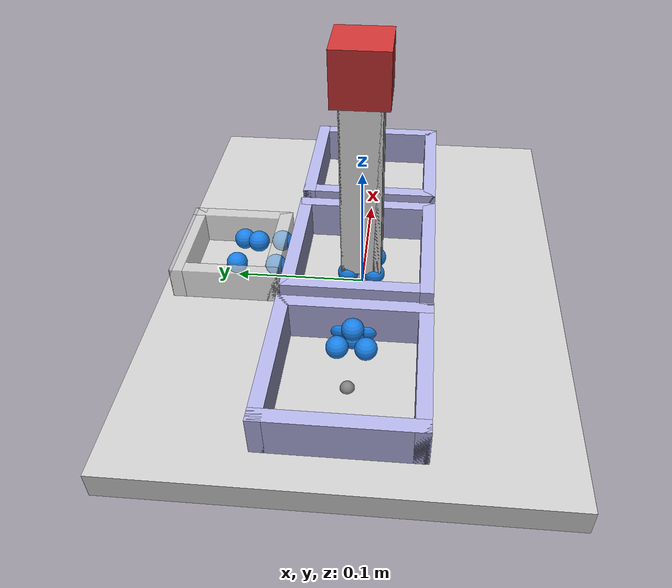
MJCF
<?xml version="1.0" encoding="utf-8"?>
<mujoco model="particle_pipette_system">
    <compiler angle="radian" coordinate="local" meshdir="../meshes" texturedir="../textures"/>
    <option timestep="0.001" iterations="100" solver="Newton" tolerance="1e-10" gravity="0 0 -9.81"/>

    <size nconmax="1000" njmax="2000" nstack="1000000"/>

    <asset>
        <material name="well_material" rgba="0.7 0.7 0.9 1"/>
        <material name="pipette_material" rgba="0.9 0.9 0.9 1"/>
        <material name="machine_material" rgba="0.5 0.5 0.5 1"/>
        <material name="surface_material" rgba="0.8 0.8 0.8 1"/>
        <material name="particle_material" rgba="0.1 0.5 0.9 0.9"/>
        <material name="container_material" rgba="0.8 0.8 0.8 0.6"/>
        <material name="plunger_material" rgba="0.8 0.2 0.2 1"/>
        <material name="transparent_wall" rgba="0.9 0.9 0.9 0.3"/>
    </asset>

    <default>
        <geom friction="0.5 0.1 0.1" solimp="0.9 0.95 0.001" solref="0.02 1"/>
        <joint damping="0.1"/>
    </default>

    <worldbody>
        <!-- Lighting and camera -->
        <light directional="true" diffuse=".8 .8 .8" specular=".2 .2 .2" pos="0 0 5" dir="0 0 -1"/>
        <camera name="top_view" pos="0 0 0.8" xyaxes="1 0 0 0 1 0"/>
        <camera name="side_view" pos="0.5 0 0.3" xyaxes="0 1 0 0 0 1"/>

        <!-- Smaller surface -->
        <body name="surface" pos="0 0 0">
            <geom type="box" size="0.2 0.15 0.01" rgba="0.8 0.8 0.8 1" material="surface_material"/>
        </body>

        <!-- Bigger wells, closer together -->
        <body name="well_1" pos="-0.12 0 0.01">
            <!-- Bigger well bottom -->
            <geom name="well_1_bottom" type="box" size="0.05 0.05 0.005" pos="0 0 -0.025" material="well_material"/>
            <!-- Bigger well walls -->
            <geom name="well_1_wall_n" type="box" size="0.055 0.005 0.03" pos="0 0.05 0" material="well_material"/>
            <geom name="well_1_wall_s" type="box" size="0.055 0.005 0.03" pos="0 -0.05 0" material="well_material"/>
            <geom name="well_1_wall_e" type="box" size="0.005 0.055 0.03" pos="0.05 0 0" material="well_material"/>
            <geom name="well_1_wall_w" type="box" size="0.005 0.055 0.03" pos="-0.05 0 0" material="well_material"/>
            <site name="well_1_site" pos="0 0 0" size="0.005"/>
        </body>

        <body name="well_2" pos="0 0 0.01">
            <geom name="well_2_bottom" type="box" size="0.05 0.05 0.005" pos="0 0 -0.025" material="well_material"/>
            <geom name="well_2_wall_n" type="box" size="0.055 0.005 0.03" pos="0 0.05 0" material="well_material"/>
            <geom name="well_2_wall_s" type="box" size="0.055 0.005 0.03" pos="0 -0.05 0" material="well_material"/>
            <geom name="well_2_wall_e" type="box" size="0.005 0.055 0.03" pos="0.05 0 0" material="well_material"/>
            <geom name="well_2_wall_w" type="box" size="0.005 0.055 0.03" pos="-0.05 0 0" material="well_material"/>
            <site name="well_2_site" pos="0 0 0" size="0.005"/>
        </body>

        <body name="well_3" pos="0.12 0 0.01">
            <geom name="well_3_bottom" type="box" size="0.05 0.05 0.005" pos="0 0 -0.025" material="well_material"/>
            <geom name="well_3_wall_n" type="box" size="0.055 0.005 0.03" pos="0 0.05 0" material="well_material"/>
            <geom name="well_3_wall_s" type="box" size="0.055 0.005 0.03" pos="0 -0.05 0" material="well_material"/>
            <geom name="well_3_wall_e" type="box" size="0.005 0.055 0.03" pos="0.05 0 0" material="well_material"/>
            <geom name="well_3_wall_w" type="box" size="0.005 0.055 0.03" pos="-0.05 0 0" material="well_material"/>
            <site name="well_3_site" pos="0 0 0" size="0.005"/>
        </body>

        <!-- Compact container -->
        <body name="particle_container" pos="0 0.1 0.0">
            <geom name="container_bottom" type="box" size="0.04 0.04 0.005" pos="0 0 0" material="container_material"/>
            <geom name="container_wall_1" type="box" size="0.005 0.04 0.02" pos="0.035 0 0.015" material="container_material"/>
            <geom name="container_wall_2" type="box" size="0.005 0.04 0.02" pos="-0.035 0 0.015" material="container_material"/>
            <geom name="container_wall_3" type="box" size="0.04 0.005 0.02" pos="0 0.035 0.015" material="container_material"/>
            <geom name="container_wall_4" type="box" size="0.04 0.005 0.02" pos="0 -0.035 0.015" material="container_material"/>
        </body>

        <!-- Particles in wells - more clustered -->
        <body name="particle_1_1" pos="-0.09 -0.01 0.017">
            <freejoint/>
            <geom name="p_1_1" type="sphere" size="0.008" material="particle_material" mass="0.01"/>
        </body>
        <body name="particle_1_2" pos="-0.07 -0.01 0.017">
            <freejoint/>
            <geom name="p_1_2" type="sphere" size="0.008" material="particle_material" mass="0.01"/>
        </body>
        <body name="particle_1_3" pos="-0.09 0.01 0.017">
            <freejoint/>
            <geom name="p_1_3" type="sphere" size="0.008" material="particle_material" mass="0.01"/>
        </body>
        <body name="particle_1_4" pos="-0.07 0.01 0.017">
            <freejoint/>
            <geom name="p_1_4" type="sphere" size="0.008" material="particle_material" mass="0.01"/>
        </body>
        <body name="particle_1_5" pos="-0.08 0 0.017">
            <freejoint/>
            <geom name="p_1_5" type="sphere" size="0.008" material="particle_material" mass="0.01"/>
        </body>
        <body name="particle_1_6" pos="-0.08 0 0.025">
            <freejoint/>
            <geom name="p_1_6" type="sphere" size="0.008" material="particle_material" mass="0.01"/>
        </body>

        <body name="particle_2_1" pos="-0.01 -0.01 0.017">
            <freejoint/>
            <geom name="p_2_1" type="sphere" size="0.008" material="particle_material" mass="0.01"/>
        </body>
        <body name="particle_2_2" pos="0.01 -0.01 0.017">
            <freejoint/>
            <geom name="p_2_2" type="sphere" size="0.008" material="particle_material" mass="0.01"/>
        </body>
        <body name="particle_2_3" pos="-0.01 0.01 0.017">
            <freejoint/>
            <geom name="p_2_3" type="sphere" size="0.008" material="particle_material" mass="0.01"/>
        </body>
        <body name="particle_2_4" pos="0.01 0.01 0.017">
            <freejoint/>
            <geom name="p_2_4" type="sphere" size="0.008" material="particle_material" mass="0.01"/>
        </body>

        <!-- Loose particles in container - closer together -->
        <body name="loose_particle_1" pos="-0.015 0.065 0.025">
            <freejoint/>
            <geom name="lp_1" type="sphere" size="0.008" material="particle_material" mass="0.01"/>
        </body>
        <body name="loose_particle_2" pos="0.015 0.065 0.025">
            <freejoint/>
            <geom name="lp_2" type="sphere" size="0.008" material="particle_material" mass="0.01"/>
        </body>
        <body name="loose_particle_3" pos="-0.015 0.095 0.025">
            <freejoint/>
            <geom name="lp_3" type="sphere" size="0.008" material="particle_material" mass="0.01"/>
        </body>
        <body name="loose_particle_4" pos="0.015 0.095 0.025">
            <freejoint/>
            <geom name="lp_4" type="sphere" size="0.008" material="particle_material" mass="0.01"/>
        </body>
        <body name="loose_particle_5" pos="0 0.08 0.035">
            <freejoint/>
            <geom name="lp_5" type="sphere" size="0.008" material="particle_material" mass="0.01"/>
        </body>

        <!-- Pipette system - closer to wells -->
        <body name="pipette_base" pos="0 0 0.15">
            <!-- Reduced XY movement range -->
            <joint name="machine_x" type="slide" axis="1 0 0" range="-0.15 0.15" damping="20"/>
            <joint name="machine_y" type="slide" axis="0 1 0" range="-0.12 0.12" damping="20"/>

            <!-- Add mass to the main pipette body -->
            <geom name="base_mass" type="sphere" size="0.001" pos="0 0 0" rgba="0 0 0 0" mass="1.0"/>

            <!-- Plunger mechanism -->
            <body name="plunger" pos="0 0 0.03">
                <joint name="plunger_joint" type="slide" axis="0 0 1" range="0 0.08" damping="5"/>

                <!-- Square plunger head -->
                <geom name="plunger_head" type="box" size="0.02 0.02 0.02" pos="0 0 0" material="plunger_material" mass="0.2"/>

                <!-- Square plunger rod -->
                <geom name="plunger_rod" type="box" size="0.006 0.006 0.06" pos="0 0 -0.08" material="plunger_material" mass="0.1"/>

                <!-- Plunger seal -->
                <geom name="plunger_seal" type="box" size="0.009 0.009 0.003" pos="0 0 -0.025" material="plunger_material" mass="0.05"/>
            </body>

            <!-- Z movement for pipette body -->
            <body name="pipette_body" pos="0 0 0">
                <joint name="machine_z" type="slide" axis="0 0 1" range="-0.15 0.05" damping="15"/>

                <!-- Hollow rectangular pipette body -->
                <geom name="pipette_wall_n" type="box" size="0.015 0.003 0.08" pos="0 0.012 -0.05" material="pipette_material" mass="0.1"/>
                <geom name="pipette_wall_s" type="box" size="0.015 0.003 0.08" pos="0 -0.012 -0.05" material="pipette_material" mass="0.1"/>
                <geom name="pipette_wall_e" type="box" size="0.003 0.015 0.08" pos="0.012 0 -0.05" material="pipette_material" mass="0.1"/>
                <geom name="pipette_wall_w" type="box" size="0.003 0.015 0.08" pos="-0.012 0 -0.05" material="pipette_material" mass="0.1"/>

                <!-- Transparent inner chamber walls -->
                <geom name="chamber_wall_n" type="box" size="0.01 0.002 0.075" pos="0 0.008 -0.045" material="transparent_wall"/>
                <geom name="chamber_wall_s" type="box" size="0.01 0.002 0.075" pos="0 -0.008 -0.045" material="transparent_wall"/>
                <geom name="chamber_wall_e" type="box" size="0.002 0.01 0.075" pos="0.008 0 -0.045" material="transparent_wall"/>
                <geom name="chamber_wall_w" type="box" size="0.002 0.01 0.075" pos="-0.008 0 -0.045" material="transparent_wall"/>

                <!-- Pipette tip -->
                <geom name="tip_wall_n" type="box" size="0.01 0.002 0.03" pos="0 0.008 -0.13" material="pipette_material" mass="0.05"/>
                <geom name="tip_wall_s" type="box" size="0.01 0.002 0.03" pos="0 -0.008 -0.13" material="pipette_material" mass="0.05"/>
                <geom name="tip_wall_e" type="box" size="0.002 0.01 0.03" pos="0.008 0 -0.13" material="pipette_material" mass="0.05"/>
                <geom name="tip_wall_w" type="box" size="0.002 0.01 0.03" pos="-0.008 0 -0.13" material="pipette_material" mass="0.05"/>

                <!-- Suction zone -->
                <site name="suction_zone" pos="0 0 -0.16" size="0.02"/>
            </body>
        </body>
    </worldbody>

    <actuator>
        <!-- Movement controls with reduced ranges -->
        <position name="x_control" joint="machine_x" ctrlrange="-0.5 0.5" kp="100"/>
        <position name="y_control" joint="machine_y" ctrlrange="-0.5 0.5" kp="100"/>
        <position name="z_control" joint="machine_z" ctrlrange="-0 1" kp="100"/>

        <!-- Plunger control -->
        <position name="plunger_control" joint="plunger_joint" ctrlrange="0 0.5" kp="50"/>
    </actuator>

    <sensor>
        <!-- Position sensors -->
        <jointpos name="x_pos" joint="machine_x"/>
        <jointpos name="y_pos" joint="machine_y"/>
        <jointpos name="z_pos" joint="machine_z"/>
        <jointpos name="plunger_pos" joint="plunger_joint"/>

        <!-- Velocity sensors -->
        <jointvel name="plunger_vel" joint="plunger_joint"/>

        <!-- Site sensors -->
        <framepos name="suction_sensor" objtype="site" objname="suction_zone"/>

        <!-- Well position sensors -->
        <framepos name="well_1_sensor" objtype="site" objname="well_1_site"/>
        <framepos name="well_2_sensor" objtype="site" objname="well_2_site"/>
        <framepos name="well_3_sensor" objtype="site" objname="well_3_site"/>
    </sensor>
</mujoco>
